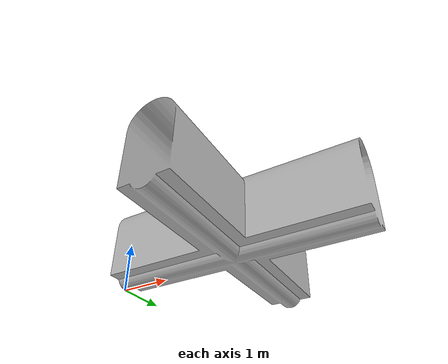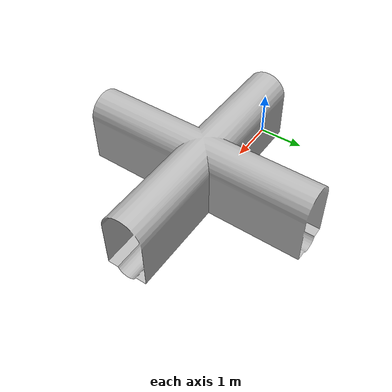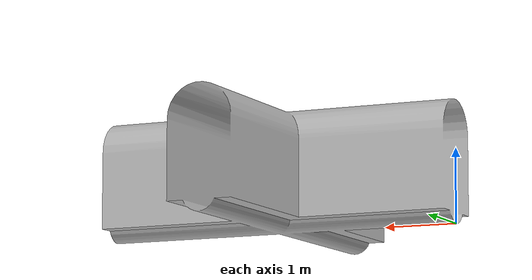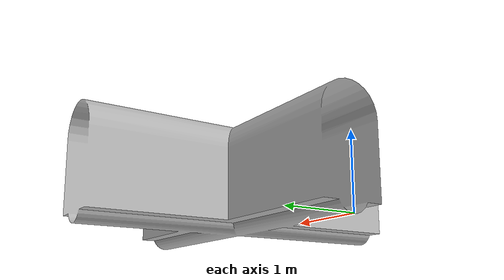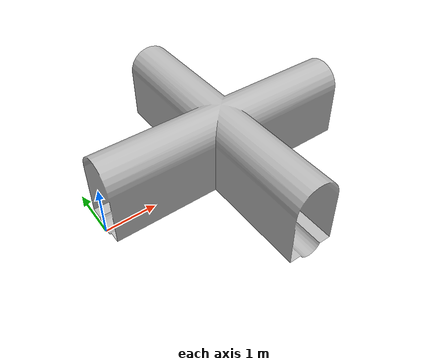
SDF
<?xml version="1.0" ?>
<sdf version="1.5">
  <model name="siar T130_X_5m_dark_brick">
   <static>true</static>

   <link name="link">
      <collision name="collision">
        <geometry>
          <mesh>
            <uri>model://T130_X_5m_dark_brick/meshes/T130_X_5m_dark_brick.dae</uri>
          </mesh>
        </geometry>
      </collision>
      <visual name="visual">
        <geometry>
          <mesh>
            <uri>model://T130_X_5m_dark_brick/meshes/T130_X_5m_dark_brick.dae</uri>
          </mesh>
        </geometry>
      </visual>
    </link>
  </model>
</sdf>
